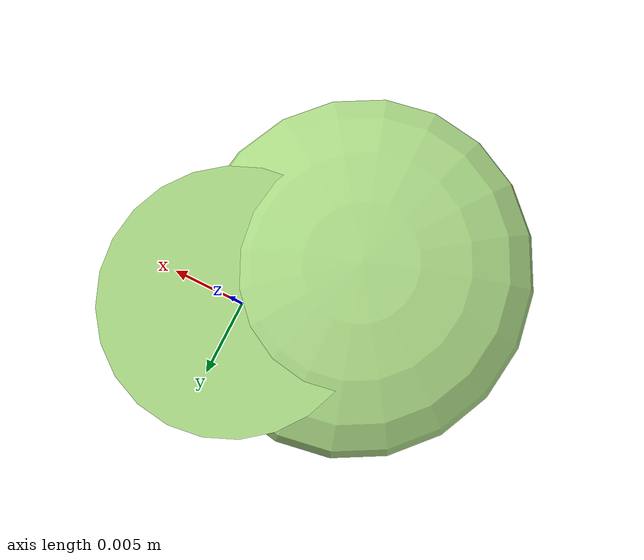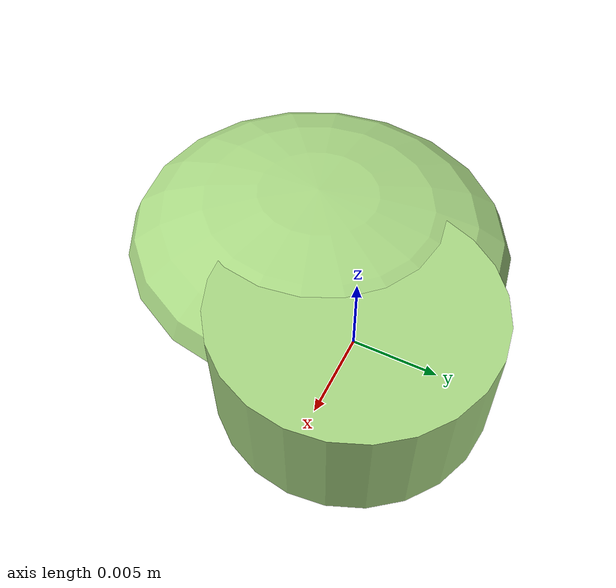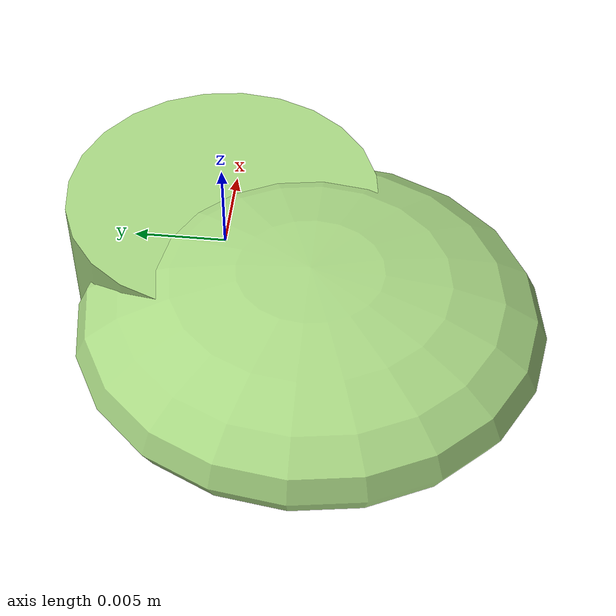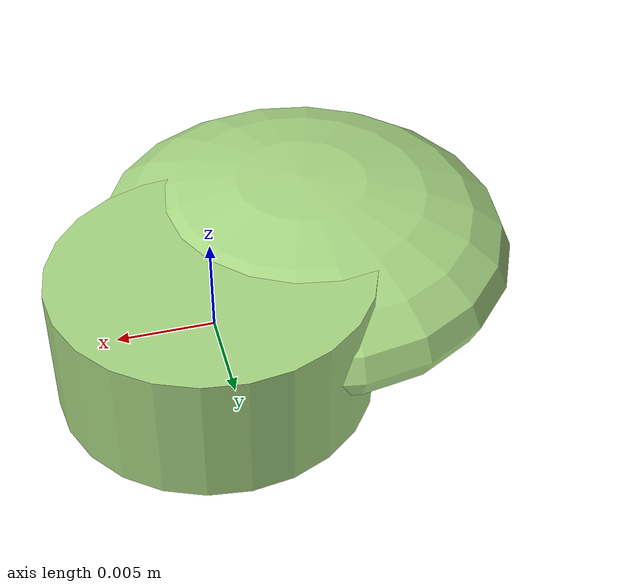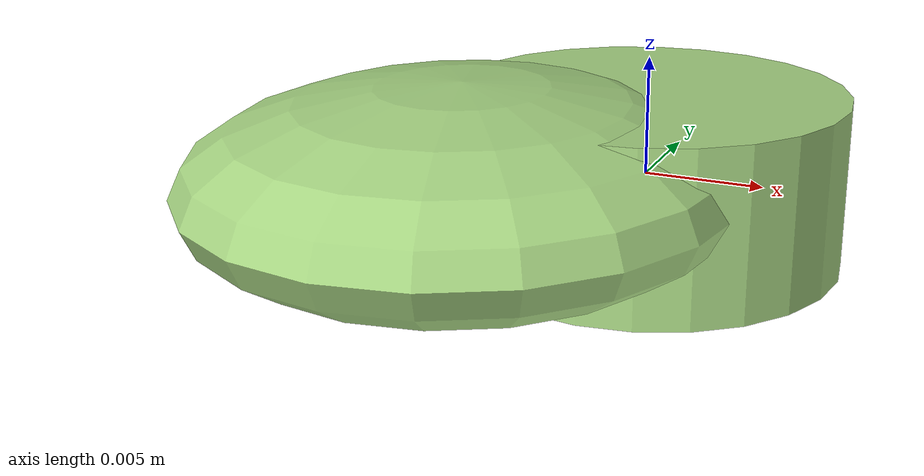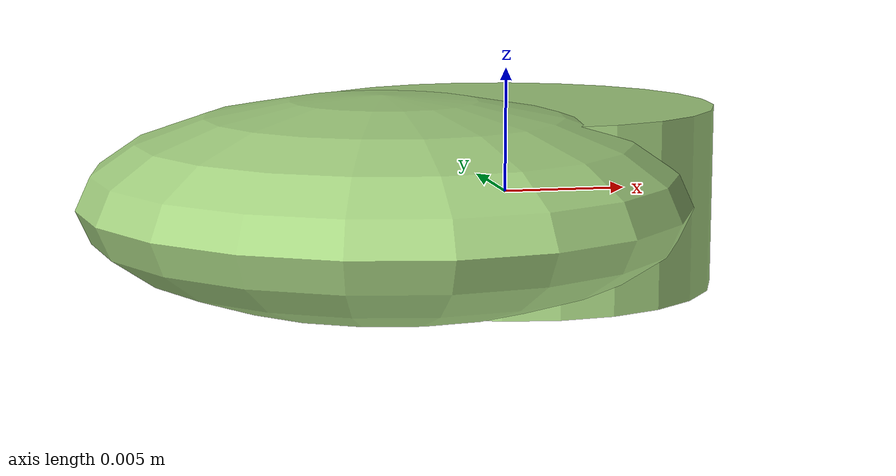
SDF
<?xml version="1.0" ?>
<!-- |    This document was autogenerated by xmacro from data/veggie_template/veggie_base.sdf.xacro  | -->
<!-- |    EDITING THIS FILE BY HAND IS NOT RECOMMENDED                                               | -->
<sdf version="1.8">
	<!-- Parameters -->
	<!-- Base -->
	<!-- Joint 0 -->
	<!-- Link 1 -->
	<!-- Joint 1 -->
	<!-- Link 2 -->
	<!-- Primitives -->
	<!-- All dimensions are half -->
	<!-- Object -->
	<model name="veggie">
		<!-- link0 -->
		<link name="link0">
			<inertial>
				<mass>0.0015560771962493563</mass>
				<inertia>
					<ixx>3.354367802489996e-08</ixx>
					<ixy>0</ixy>
					<ixz>0</ixz>
					<iyy>3.354367802489996e-08</iyy>
					<iyz>0</iyz>
					<izz>5.376120786038293e-08</izz>
				</inertia>
			</inertial>
			<visual name="link0_visual">
				<pose>0 0 0 0 0 0</pose>
				<geometry>
					<cylinder>
						<radius>0.008312543622819952</radius>
						<length>0.007168237321258113</length>
					</cylinder>
				</geometry>
				<material>
					<ambient>0.659 0.839 0.514 1</ambient>
					<diffuse>0.659 0.839 0.514 1</diffuse>
					<specular>0 0 0 0</specular>
					<emissive>0 0 0 1</emissive>
				</material>
			</visual>
			<collision name="link0_collision">
				<pose>0 0 0 0 0 0 </pose>
				<geometry>
					<cylinder>
						<radius>0.008312543622819952</radius>
						<length>0.007168237321258113</length>
					</cylinder>
				</geometry>
			</collision>
		</link>
		<!-- link1 -->
		<joint name="joint0" type="fixed">
			<pose relative_to="link0">-0.006042385995866083 -0.0052668545580724065 0.0005869312219820131 0.0 0.0 0.0</pose>
			<parent>link0</parent>
			<child>link1</child>
		</joint>
		<link name="link1">
			<pose relative_to="joint0">0 0 0 0 0 0</pose>
			<inertial>
				<mass>0.002310775925949396</mass>
				<inertia>
					<ixx>7.506632229817435e-08</ixx>
					<ixy>0</ixy>
					<ixz>0</ixz>
					<iyy>6.773777693931612e-08</iyy>
					<iyz>0</iyz>
					<izz>1.281142011637536e-07</izz>
				</inertia>
			</inertial>
			<visual name="link1_visual">
				<pose>0 0 0 0 0 0</pose>
				<geometry>
					<ellipsoid>
						<radii>0.011431382796811105 0.012105116211103571 0.003986579951701333</radii>
					</ellipsoid>
				</geometry>
				<material>
					<ambient>0.659 0.839 0.514 1</ambient>
					<diffuse>0.659 0.839 0.514 1</diffuse>
					<specular>0 0 0 0</specular>
					<emissive>0 0 0 1</emissive>
				</material>
			</visual>
			<collision name="link1_collision">
				<pose>0 0 0 0 0 0 </pose>
				<geometry>
					<ellipsoid>
						<radii>0.011431382796811105 0.012105116211103571 0.003986579951701333</radii>
					</ellipsoid>
				</geometry>
			</collision>
		</link>
		<!-- link2 -->
	</model>
</sdf>
